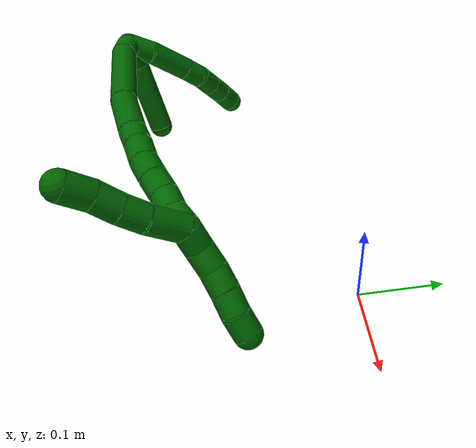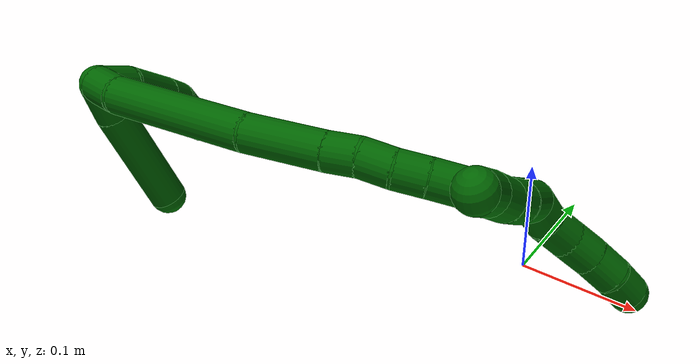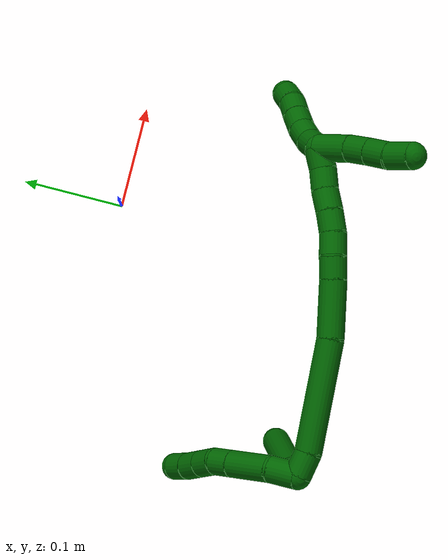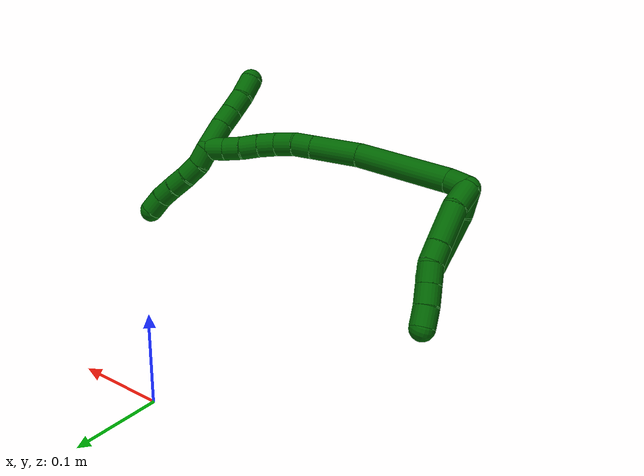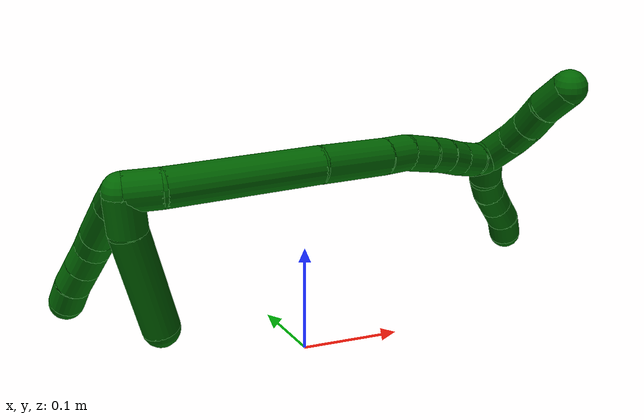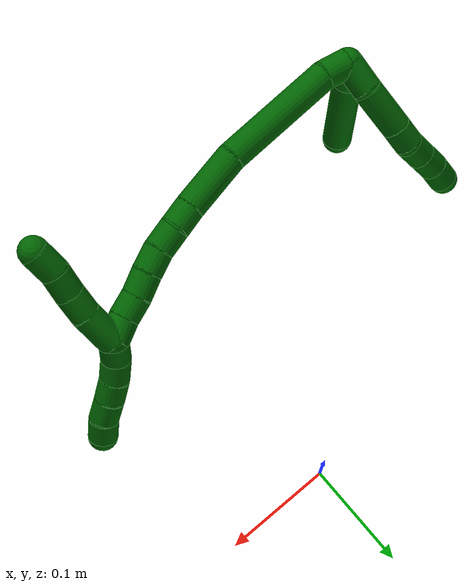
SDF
<sdf version="1.7">
 <world name="default">
  <model name="6">
   <static>0</static>
   <link name="6">
    <collision name="collision-cylinder-e_1_2_8">
     <pose>0.007932 0.006742 -0.008553 -2.47401 0.629468 -1.50772</pose>
     <geometry><cylinder><radius>0.0125</radius><length>0.026945</length></cylinder></geometry>
     <surface>
      <friction><ode><mu>1.16</mu><mu2>1.16</mu2><slip1>0</slip1><slip2>0</slip2></ode></friction>
      <contact><ode><kp>1e+06</kp><kd>1</kd><max_vel>0</max_vel><min_depth>0.001</min_depth></ode></contact>
     </surface>
    </collision>
    <visual name="visual-cylinder-e_1_2_8">
     <pose>0.007932 0.006742 -0.008553 -2.47401 0.629468 -1.50772</pose>
     <geometry><cylinder><radius>0.0125</radius><length>0.026945</length></cylinder></geometry>
     <material><ambient>0 0.392157 0.003922 1</ambient></material>
    </visual>
    <collision name="collision-cylinder-e_2_8_9">
     <pose>0.024525 0.024555 -0.033245 -2.54036 0.41667 -1.19697</pose>
     <geometry><cylinder><radius>0.0125</radius><length>0.042806</length></cylinder></geometry>
     <surface>
      <friction><ode><mu>1.16</mu><mu2>1.16</mu2><slip1>0</slip1><slip2>0</slip2></ode></friction>
      <contact><ode><kp>1e+06</kp><kd>1</kd><max_vel>0</max_vel><min_depth>0.001</min_depth></ode></contact>
     </surface>
    </collision>
    <visual name="visual-cylinder-e_2_8_9">
     <pose>0.024525 0.024555 -0.033245 -2.54036 0.41667 -1.19697</pose>
     <geometry><cylinder><radius>0.0125</radius><length>0.042806</length></cylinder></geometry>
     <material><ambient>0 0.392157 0.003922 1</ambient></material>
    </visual>
    <collision name="collision-cylinder-e_3_9_10">
     <pose>0.036994 0.040672 -0.057205 -2.56859 0.388218 -1.17684</pose>
     <geometry><cylinder><radius>0.0125</radius><length>0.020111</length></cylinder></geometry>
     <surface>
      <friction><ode><mu>1.16</mu><mu2>1.16</mu2><slip1>0</slip1><slip2>0</slip2></ode></friction>
      <contact><ode><kp>1e+06</kp><kd>1</kd><max_vel>0</max_vel><min_depth>0.001</min_depth></ode></contact>
     </surface>
    </collision>
    <visual name="visual-cylinder-e_3_9_10">
     <pose>0.036994 0.040672 -0.057205 -2.56859 0.388218 -1.17684</pose>
     <geometry><cylinder><radius>0.0125</radius><length>0.020111</length></cylinder></geometry>
     <material><ambient>0 0.392157 0.003922 1</ambient></material>
    </visual>
    <collision name="collision-cylinder-e_4_10_11">
     <pose>0.04167 0.051178 -0.073422 -2.56502 0.086655 -0.29034</pose>
     <geometry><cylinder><radius>0.0125</radius><length>0.020106</length></cylinder></geometry>
     <surface>
      <friction><ode><mu>1.16</mu><mu2>1.16</mu2><slip1>0</slip1><slip2>0</slip2></ode></friction>
      <contact><ode><kp>1e+06</kp><kd>1</kd><max_vel>0</max_vel><min_depth>0.001</min_depth></ode></contact>
     </surface>
    </collision>
    <visual name="visual-cylinder-e_4_10_11">
     <pose>0.04167 0.051178 -0.073422 -2.56502 0.086655 -0.29034</pose>
     <geometry><cylinder><radius>0.0125</radius><length>0.020106</length></cylinder></geometry>
     <material><ambient>0 0.392157 0.003922 1</ambient></material>
    </visual>
    <collision name="collision-cylinder-e_5_11_12">
     <pose>0.043421 0.062111 -0.090149 -2.56033 0.088162 -0.292839</pose>
     <geometry><cylinder><radius>0.0125</radius><length>0.020014</length></cylinder></geometry>
     <surface>
      <friction><ode><mu>1.16</mu><mu2>1.16</mu2><slip1>0</slip1><slip2>0</slip2></ode></friction>
      <contact><ode><kp>1e+06</kp><kd>1</kd><max_vel>0</max_vel><min_depth>0.001</min_depth></ode></contact>
     </surface>
    </collision>
    <visual name="visual-cylinder-e_5_11_12">
     <pose>0.043421 0.062111 -0.090149 -2.56033 0.088162 -0.292839</pose>
     <geometry><cylinder><radius>0.0125</radius><length>0.020014</length></cylinder></geometry>
     <material><ambient>0 0.392157 0.003922 1</ambient></material>
    </visual>
    <collision name="collision-cylinder-e_6_12_6">
     <pose>0.045715 0.072237 -0.107229 -2.65287 0.141624 -0.554294</pose>
     <geometry><cylinder><radius>0.0125</radius><length>0.020018</length></cylinder></geometry>
     <surface>
      <friction><ode><mu>1.16</mu><mu2>1.16</mu2><slip1>0</slip1><slip2>0</slip2></ode></friction>
      <contact><ode><kp>1e+06</kp><kd>1</kd><max_vel>0</max_vel><min_depth>0.001</min_depth></ode></contact>
     </surface>
    </collision>
    <visual name="visual-cylinder-e_6_12_6">
     <pose>0.045715 0.072237 -0.107229 -2.65287 0.141624 -0.554294</pose>
     <geometry><cylinder><radius>0.0125</radius><length>0.020018</length></cylinder></geometry>
     <material><ambient>0 0.392157 0.003922 1</ambient></material>
    </visual>
    <collision name="collision-cylinder-e_1_2_13">
     <pose>-0.000567 8.1e-05 -0.012856 -3.13533 -0.044048 2.85901</pose>
     <geometry><cylinder><radius>0.0125</radius><length>0.025738</length></cylinder></geometry>
     <surface>
      <friction><ode><mu>1.16</mu><mu2>1.16</mu2><slip1>0</slip1><slip2>0</slip2></ode></friction>
      <contact><ode><kp>1e+06</kp><kd>1</kd><max_vel>0</max_vel><min_depth>0.001</min_depth></ode></contact>
     </surface>
    </collision>
    <visual name="visual-cylinder-e_1_2_13">
     <pose>-0.000567 8.1e-05 -0.012856 -3.13533 -0.044048 2.85901</pose>
     <geometry><cylinder><radius>0.0125</radius><length>0.025738</length></cylinder></geometry>
     <material><ambient>0 0.392157 0.003922 1</ambient></material>
    </visual>
    <collision name="collision-cylinder-e_2_13_5">
     <pose>0.001311 -0.004257 -0.062499 3.02207 0.065867 1.00668</pose>
     <geometry><cylinder><radius>0.0125</radius><length>0.074262</length></cylinder></geometry>
     <surface>
      <friction><ode><mu>1.16</mu><mu2>1.16</mu2><slip1>0</slip1><slip2>0</slip2></ode></friction>
      <contact><ode><kp>1e+06</kp><kd>1</kd><max_vel>0</max_vel><min_depth>0.001</min_depth></ode></contact>
     </surface>
    </collision>
    <visual name="visual-cylinder-e_2_13_5">
     <pose>0.001311 -0.004257 -0.062499 3.02207 0.065867 1.00668</pose>
     <geometry><cylinder><radius>0.0125</radius><length>0.074262</length></cylinder></geometry>
     <material><ambient>0 0.392157 0.003922 1</ambient></material>
    </visual>
    <collision name="collision-cylinder-e_1_2_14">
     <pose>0.004472 -0.010492 -0.000556 1.62375 0.402389 0.42365</pose>
     <geometry><cylinder><radius>0.0125</radius><length>0.022838</length></cylinder></geometry>
     <surface>
      <friction><ode><mu>1.16</mu><mu2>1.16</mu2><slip1>0</slip1><slip2>0</slip2></ode></friction>
      <contact><ode><kp>1e+06</kp><kd>1</kd><max_vel>0</max_vel><min_depth>0.001</min_depth></ode></contact>
     </surface>
    </collision>
    <visual name="visual-cylinder-e_1_2_14">
     <pose>0.004472 -0.010492 -0.000556 1.62375 0.402389 0.42365</pose>
     <geometry><cylinder><radius>0.0125</radius><length>0.022838</length></cylinder></geometry>
     <material><ambient>0 0.392157 0.003922 1</ambient></material>
    </visual>
    <collision name="collision-cylinder-e_2_14_15">
     <pose>0.038849 -0.062063 -0.006875 1.71016 0.624648 0.711129</pose>
     <geometry><cylinder><radius>0.0125</radius><length>0.102275</length></cylinder></geometry>
     <surface>
      <friction><ode><mu>1.16</mu><mu2>1.16</mu2><slip1>0</slip1><slip2>0</slip2></ode></friction>
      <contact><ode><kp>1e+06</kp><kd>1</kd><max_vel>0</max_vel><min_depth>0.001</min_depth></ode></contact>
     </surface>
    </collision>
    <visual name="visual-cylinder-e_2_14_15">
     <pose>0.038849 -0.062063 -0.006875 1.71016 0.624648 0.711129</pose>
     <geometry><cylinder><radius>0.0125</radius><length>0.102275</length></cylinder></geometry>
     <material><ambient>0 0.392157 0.003922 1</ambient></material>
    </visual>
    <collision name="collision-cylinder-e_3_15_16">
     <pose>0.086598 -0.12191 -0.017621 1.83035 0.743135 0.937898</pose>
     <geometry><cylinder><radius>0.0125</radius><length>0.052742</length></cylinder></geometry>
     <surface>
      <friction><ode><mu>1.16</mu><mu2>1.16</mu2><slip1>0</slip1><slip2>0</slip2></ode></friction>
      <contact><ode><kp>1e+06</kp><kd>1</kd><max_vel>0</max_vel><min_depth>0.001</min_depth></ode></contact>
     </surface>
    </collision>
    <visual name="visual-cylinder-e_3_15_16">
     <pose>0.086598 -0.12191 -0.017621 1.83035 0.743135 0.937898</pose>
     <geometry><cylinder><radius>0.0125</radius><length>0.052742</length></cylinder></geometry>
     <material><ambient>0 0.392157 0.003922 1</ambient></material>
    </visual>
    <collision name="collision-cylinder-e_4_16_17">
     <pose>0.111961 -0.14759 -0.024488 1.83689 0.80965 1.02236</pose>
     <geometry><cylinder><radius>0.0125</radius><length>0.020772</length></cylinder></geometry>
     <surface>
      <friction><ode><mu>1.16</mu><mu2>1.16</mu2><slip1>0</slip1><slip2>0</slip2></ode></friction>
      <contact><ode><kp>1e+06</kp><kd>1</kd><max_vel>0</max_vel><min_depth>0.001</min_depth></ode></contact>
     </surface>
    </collision>
    <visual name="visual-cylinder-e_4_16_17">
     <pose>0.111961 -0.14759 -0.024488 1.83689 0.80965 1.02236</pose>
     <geometry><cylinder><radius>0.0125</radius><length>0.020772</length></cylinder></geometry>
     <material><ambient>0 0.392157 0.003922 1</ambient></material>
    </visual>
    <collision name="collision-cylinder-e_5_17_18">
     <pose>0.126263 -0.16166 -0.029941 2.03329 0.703331 1.07039</pose>
     <geometry><cylinder><radius>0.0125</radius><length>0.020975</length></cylinder></geometry>
     <surface>
      <friction><ode><mu>1.16</mu><mu2>1.16</mu2><slip1>0</slip1><slip2>0</slip2></ode></friction>
      <contact><ode><kp>1e+06</kp><kd>1</kd><max_vel>0</max_vel><min_depth>0.001</min_depth></ode></contact>
     </surface>
    </collision>
    <visual name="visual-cylinder-e_5_17_18">
     <pose>0.126263 -0.16166 -0.029941 2.03329 0.703331 1.07039</pose>
     <geometry><cylinder><radius>0.0125</radius><length>0.020975</length></cylinder></geometry>
     <material><ambient>0 0.392157 0.003922 1</ambient></material>
    </visual>
    <collision name="collision-cylinder-e_6_18_19">
     <pose>0.14041 -0.174436 -0.037374 2.17336 0.823873 1.38661</pose>
     <geometry><cylinder><radius>0.0125</radius><length>0.020072</length></cylinder></geometry>
     <surface>
      <friction><ode><mu>1.16</mu><mu2>1.16</mu2><slip1>0</slip1><slip2>0</slip2></ode></friction>
      <contact><ode><kp>1e+06</kp><kd>1</kd><max_vel>0</max_vel><min_depth>0.001</min_depth></ode></contact>
     </surface>
    </collision>
    <visual name="visual-cylinder-e_6_18_19">
     <pose>0.14041 -0.174436 -0.037374 2.17336 0.823873 1.38661</pose>
     <geometry><cylinder><radius>0.0125</radius><length>0.020072</length></cylinder></geometry>
     <material><ambient>0 0.392157 0.003922 1</ambient></material>
    </visual>
    <collision name="collision-cylinder-e_7_19_20">
     <pose>0.155195 -0.185172 -0.045744 2.29259 0.827541 1.54194</pose>
     <geometry><cylinder><radius>0.0125</radius><length>0.020156</length></cylinder></geometry>
     <surface>
      <friction><ode><mu>1.16</mu><mu2>1.16</mu2><slip1>0</slip1><slip2>0</slip2></ode></friction>
      <contact><ode><kp>1e+06</kp><kd>1</kd><max_vel>0</max_vel><min_depth>0.001</min_depth></ode></contact>
     </surface>
    </collision>
    <visual name="visual-cylinder-e_7_19_20">
     <pose>0.155195 -0.185172 -0.045744 2.29259 0.827541 1.54194</pose>
     <geometry><cylinder><radius>0.0125</radius><length>0.020156</length></cylinder></geometry>
     <material><ambient>0 0.392157 0.003922 1</ambient></material>
    </visual>
    <collision name="collision-cylinder-e_8_20_21">
     <pose>0.169631 -0.196383 -0.054011 2.12381 0.775309 1.2636</pose>
     <geometry><cylinder><radius>0.0125</radius><length>0.020047</length></cylinder></geometry>
     <surface>
      <friction><ode><mu>1.16</mu><mu2>1.16</mu2><slip1>0</slip1><slip2>0</slip2></ode></friction>
      <contact><ode><kp>1e+06</kp><kd>1</kd><max_vel>0</max_vel><min_depth>0.001</min_depth></ode></contact>
     </surface>
    </collision>
    <visual name="visual-cylinder-e_8_20_21">
     <pose>0.169631 -0.196383 -0.054011 2.12381 0.775309 1.2636</pose>
     <geometry><cylinder><radius>0.0125</radius><length>0.020047</length></cylinder></geometry>
     <material><ambient>0 0.392157 0.003922 1</ambient></material>
    </visual>
    <collision name="collision-cylinder-e_9_21_1">
     <pose>0.184908 -0.207422 -0.06069 2.10388 0.963214 1.48237</pose>
     <geometry><cylinder><radius>0.0125</radius><length>0.020123</length></cylinder></geometry>
     <surface>
      <friction><ode><mu>1.16</mu><mu2>1.16</mu2><slip1>0</slip1><slip2>0</slip2></ode></friction>
      <contact><ode><kp>1e+06</kp><kd>1</kd><max_vel>0</max_vel><min_depth>0.001</min_depth></ode></contact>
     </surface>
    </collision>
    <visual name="visual-cylinder-e_9_21_1">
     <pose>0.184908 -0.207422 -0.06069 2.10388 0.963214 1.48237</pose>
     <geometry><cylinder><radius>0.0125</radius><length>0.020123</length></cylinder></geometry>
     <material><ambient>0 0.392157 0.003922 1</ambient></material>
    </visual>
    <collision name="collision-cylinder-e_1_1_22">
     <pose>0.185882 -0.221362 -0.052014 0.659693 -0.460899 -0.1603</pose>
     <geometry><cylinder><radius>0.0125</radius><length>0.032768</length></cylinder></geometry>
     <surface>
      <friction><ode><mu>1.16</mu><mu2>1.16</mu2><slip1>0</slip1><slip2>0</slip2></ode></friction>
      <contact><ode><kp>1e+06</kp><kd>1</kd><max_vel>0</max_vel><min_depth>0.001</min_depth></ode></contact>
     </surface>
    </collision>
    <visual name="visual-cylinder-e_1_1_22">
     <pose>0.185882 -0.221362 -0.052014 0.659693 -0.460899 -0.1603</pose>
     <geometry><cylinder><radius>0.0125</radius><length>0.032768</length></cylinder></geometry>
     <material><ambient>0 0.392157 0.003922 1</ambient></material>
    </visual>
    <collision name="collision-cylinder-e_2_22_23">
     <pose>0.17332 -0.235049 -0.032347 0.526674 -0.514271 -0.141548</pose>
     <geometry><cylinder><radius>0.0125</radius><length>0.021448</length></cylinder></geometry>
     <surface>
      <friction><ode><mu>1.16</mu><mu2>1.16</mu2><slip1>0</slip1><slip2>0</slip2></ode></friction>
      <contact><ode><kp>1e+06</kp><kd>1</kd><max_vel>0</max_vel><min_depth>0.001</min_depth></ode></contact>
     </surface>
    </collision>
    <visual name="visual-cylinder-e_2_22_23">
     <pose>0.17332 -0.235049 -0.032347 0.526674 -0.514271 -0.141548</pose>
     <geometry><cylinder><radius>0.0125</radius><length>0.021448</length></cylinder></geometry>
     <material><ambient>0 0.392157 0.003922 1</ambient></material>
    </visual>
    <collision name="collision-cylinder-e_3_23_24">
     <pose>0.162984 -0.243783 -0.01543 0.428554 -0.479797 -0.106362</pose>
     <geometry><cylinder><radius>0.0125</radius><length>0.021925</length></cylinder></geometry>
     <surface>
      <friction><ode><mu>1.16</mu><mu2>1.16</mu2><slip1>0</slip1><slip2>0</slip2></ode></friction>
      <contact><ode><kp>1e+06</kp><kd>1</kd><max_vel>0</max_vel><min_depth>0.001</min_depth></ode></contact>
     </surface>
    </collision>
    <visual name="visual-cylinder-e_3_23_24">
     <pose>0.162984 -0.243783 -0.01543 0.428554 -0.479797 -0.106362</pose>
     <geometry><cylinder><radius>0.0125</radius><length>0.021925</length></cylinder></geometry>
     <material><ambient>0 0.392157 0.003922 1</ambient></material>
    </visual>
    <collision name="collision-cylinder-e_4_24_4">
     <pose>0.153139 -0.254253 0.002252 0.628896 -0.412752 -0.135972</pose>
     <geometry><cylinder><radius>0.0125</radius><length>0.023859</length></cylinder></geometry>
     <surface>
      <friction><ode><mu>1.16</mu><mu2>1.16</mu2><slip1>0</slip1><slip2>0</slip2></ode></friction>
      <contact><ode><kp>1e+06</kp><kd>1</kd><max_vel>0</max_vel><min_depth>0.001</min_depth></ode></contact>
     </surface>
    </collision>
    <visual name="visual-cylinder-e_4_24_4">
     <pose>0.153139 -0.254253 0.002252 0.628896 -0.412752 -0.135972</pose>
     <geometry><cylinder><radius>0.0125</radius><length>0.023859</length></cylinder></geometry>
     <material><ambient>0 0.392157 0.003922 1</ambient></material>
    </visual>
    <collision name="collision-cylinder-e_1_1_25">
     <pose>0.195573 -0.212748 -0.073308 3.10244 0.242889 2.82348</pose>
     <geometry><cylinder><radius>0.0125</radius><length>0.02</length></cylinder></geometry>
     <surface>
      <friction><ode><mu>1.16</mu><mu2>1.16</mu2><slip1>0</slip1><slip2>0</slip2></ode></friction>
      <contact><ode><kp>1e+06</kp><kd>1</kd><max_vel>0</max_vel><min_depth>0.001</min_depth></ode></contact>
     </surface>
    </collision>
    <visual name="visual-cylinder-e_1_1_25">
     <pose>0.195573 -0.212748 -0.073308 3.10244 0.242889 2.82348</pose>
     <geometry><cylinder><radius>0.0125</radius><length>0.02</length></cylinder></geometry>
     <material><ambient>0 0.392157 0.003922 1</ambient></material>
    </visual>
    <collision name="collision-cylinder-e_2_25_26">
     <pose>0.202532 -0.21512 -0.091685 2.91604 0.472771 2.26261</pose>
     <geometry><cylinder><radius>0.0125</radius><length>0.02</length></cylinder></geometry>
     <surface>
      <friction><ode><mu>1.16</mu><mu2>1.16</mu2><slip1>0</slip1><slip2>0</slip2></ode></friction>
      <contact><ode><kp>1e+06</kp><kd>1</kd><max_vel>0</max_vel><min_depth>0.001</min_depth></ode></contact>
     </surface>
    </collision>
    <visual name="visual-cylinder-e_2_25_26">
     <pose>0.202532 -0.21512 -0.091685 2.91604 0.472771 2.26261</pose>
     <geometry><cylinder><radius>0.0125</radius><length>0.02</length></cylinder></geometry>
     <material><ambient>0 0.392157 0.003922 1</ambient></material>
    </visual>
    <collision name="collision-cylinder-e_3_26_27">
     <pose>0.211683 -0.220467 -0.108584 2.75398 0.477753 1.78486</pose>
     <geometry><cylinder><radius>0.0125</radius><length>0.02</length></cylinder></geometry>
     <surface>
      <friction><ode><mu>1.16</mu><mu2>1.16</mu2><slip1>0</slip1><slip2>0</slip2></ode></friction>
      <contact><ode><kp>1e+06</kp><kd>1</kd><max_vel>0</max_vel><min_depth>0.001</min_depth></ode></contact>
     </surface>
    </collision>
    <visual name="visual-cylinder-e_3_26_27">
     <pose>0.211683 -0.220467 -0.108584 2.75398 0.477753 1.78486</pose>
     <geometry><cylinder><radius>0.0125</radius><length>0.02</length></cylinder></geometry>
     <material><ambient>0 0.392157 0.003922 1</ambient></material>
    </visual>
    <collision name="collision-cylinder-e_4_27_28">
     <pose>0.220421 -0.227455 -0.125152 2.7313 0.426863 1.61157</pose>
     <geometry><cylinder><radius>0.0125</radius><length>0.02</length></cylinder></geometry>
     <surface>
      <friction><ode><mu>1.16</mu><mu2>1.16</mu2><slip1>0</slip1><slip2>0</slip2></ode></friction>
      <contact><ode><kp>1e+06</kp><kd>1</kd><max_vel>0</max_vel><min_depth>0.001</min_depth></ode></contact>
     </surface>
    </collision>
    <visual name="visual-cylinder-e_4_27_28">
     <pose>0.220421 -0.227455 -0.125152 2.7313 0.426863 1.61157</pose>
     <geometry><cylinder><radius>0.0125</radius><length>0.02</length></cylinder></geometry>
     <material><ambient>0 0.392157 0.003922 1</ambient></material>
    </visual>
    <collision name="collision-cylinder-e_5_28_3">
     <pose>0.228133 -0.232834 -0.142675 2.95329 0.36525 2.19628</pose>
     <geometry><cylinder><radius>0.0125</radius><length>0.02</length></cylinder></geometry>
     <surface>
      <friction><ode><mu>1.16</mu><mu2>1.16</mu2><slip1>0</slip1><slip2>0</slip2></ode></friction>
      <contact><ode><kp>1e+06</kp><kd>1</kd><max_vel>0</max_vel><min_depth>0.001</min_depth></ode></contact>
     </surface>
    </collision>
    <visual name="visual-cylinder-e_5_28_3">
     <pose>0.228133 -0.232834 -0.142675 2.95329 0.36525 2.19628</pose>
     <geometry><cylinder><radius>0.0125</radius><length>0.02</length></cylinder></geometry>
     <material><ambient>0 0.392157 0.003922 1</ambient></material>
    </visual>
    <collision name="collision-sphere-3">
     <pose>0.231705 -0.234582 -0.15185 0 -0 0</pose>
     <geometry><sphere><radius>0.0125</radius></sphere></geometry>
     <surface>
      <friction><ode><mu>1.16</mu><mu2>1.16</mu2><slip1>0</slip1><slip2>0</slip2></ode></friction>
      <contact><ode><kp>1e+06</kp><kd>1</kd><max_vel>0</max_vel><min_depth>0.001</min_depth></ode></contact>
     </surface>
    </collision>
    <visual name="visual-sphere-3">
     <pose>0.231705 -0.234582 -0.15185 0 -0 0</pose>
     <geometry><sphere><radius>0.0125</radius></sphere></geometry>
     <material><ambient>0 0.392157 0.003922 1</ambient></material>
    </visual>
    <collision name="collision-sphere-28">
     <pose>0.224562 -0.231086 -0.1335 0 -0 0</pose>
     <geometry><sphere><radius>0.0125</radius></sphere></geometry>
     <surface>
      <friction><ode><mu>1.16</mu><mu2>1.16</mu2><slip1>0</slip1><slip2>0</slip2></ode></friction>
      <contact><ode><kp>1e+06</kp><kd>1</kd><max_vel>0</max_vel><min_depth>0.001</min_depth></ode></contact>
     </surface>
    </collision>
    <visual name="visual-sphere-28">
     <pose>0.224562 -0.231086 -0.1335 0 -0 0</pose>
     <geometry><sphere><radius>0.0125</radius></sphere></geometry>
     <material><ambient>0 0.392157 0.003922 1</ambient></material>
    </visual>
    <collision name="collision-sphere-27">
     <pose>0.216281 -0.223824 -0.116805 0 -0 0</pose>
     <geometry><sphere><radius>0.0125</radius></sphere></geometry>
     <surface>
      <friction><ode><mu>1.16</mu><mu2>1.16</mu2><slip1>0</slip1><slip2>0</slip2></ode></friction>
      <contact><ode><kp>1e+06</kp><kd>1</kd><max_vel>0</max_vel><min_depth>0.001</min_depth></ode></contact>
     </surface>
    </collision>
    <visual name="visual-sphere-27">
     <pose>0.216281 -0.223824 -0.116805 0 -0 0</pose>
     <geometry><sphere><radius>0.0125</radius></sphere></geometry>
     <material><ambient>0 0.392157 0.003922 1</ambient></material>
    </visual>
    <collision name="collision-sphere-26">
     <pose>0.207086 -0.217111 -0.100362 0 -0 0</pose>
     <geometry><sphere><radius>0.0125</radius></sphere></geometry>
     <surface>
      <friction><ode><mu>1.16</mu><mu2>1.16</mu2><slip1>0</slip1><slip2>0</slip2></ode></friction>
      <contact><ode><kp>1e+06</kp><kd>1</kd><max_vel>0</max_vel><min_depth>0.001</min_depth></ode></contact>
     </surface>
    </collision>
    <visual name="visual-sphere-26">
     <pose>0.207086 -0.217111 -0.100362 0 -0 0</pose>
     <geometry><sphere><radius>0.0125</radius></sphere></geometry>
     <material><ambient>0 0.392157 0.003922 1</ambient></material>
    </visual>
    <collision name="collision-sphere-25">
     <pose>0.197979 -0.213128 -0.083007 0 -0 0</pose>
     <geometry><sphere><radius>0.0125</radius></sphere></geometry>
     <surface>
      <friction><ode><mu>1.16</mu><mu2>1.16</mu2><slip1>0</slip1><slip2>0</slip2></ode></friction>
      <contact><ode><kp>1e+06</kp><kd>1</kd><max_vel>0</max_vel><min_depth>0.001</min_depth></ode></contact>
     </surface>
    </collision>
    <visual name="visual-sphere-25">
     <pose>0.197979 -0.213128 -0.083007 0 -0 0</pose>
     <geometry><sphere><radius>0.0125</radius></sphere></geometry>
     <material><ambient>0 0.392157 0.003922 1</ambient></material>
    </visual>
    <collision name="collision-sphere-4">
     <pose>0.148353 -0.260681 0.011089 0 -0 0</pose>
     <geometry><sphere><radius>0.0125</radius></sphere></geometry>
     <surface>
      <friction><ode><mu>1.16</mu><mu2>1.16</mu2><slip1>0</slip1><slip2>0</slip2></ode></friction>
      <contact><ode><kp>1e+06</kp><kd>1</kd><max_vel>0</max_vel><min_depth>0.001</min_depth></ode></contact>
     </surface>
    </collision>
    <visual name="visual-sphere-4">
     <pose>0.148353 -0.260681 0.011089 0 -0 0</pose>
     <geometry><sphere><radius>0.0125</radius></sphere></geometry>
     <material><ambient>0 0.392157 0.003922 1</ambient></material>
    </visual>
    <collision name="collision-sphere-24">
     <pose>0.157924 -0.247824 -0.006585 0 -0 0</pose>
     <geometry><sphere><radius>0.0125</radius></sphere></geometry>
     <surface>
      <friction><ode><mu>1.16</mu><mu2>1.16</mu2><slip1>0</slip1><slip2>0</slip2></ode></friction>
      <contact><ode><kp>1e+06</kp><kd>1</kd><max_vel>0</max_vel><min_depth>0.001</min_depth></ode></contact>
     </surface>
    </collision>
    <visual name="visual-sphere-24">
     <pose>0.157924 -0.247824 -0.006585 0 -0 0</pose>
     <geometry><sphere><radius>0.0125</radius></sphere></geometry>
     <material><ambient>0 0.392157 0.003922 1</ambient></material>
    </visual>
    <collision name="collision-sphere-23">
     <pose>0.168044 -0.239742 -0.024275 0 -0 0</pose>
     <geometry><sphere><radius>0.0125</radius></sphere></geometry>
     <surface>
      <friction><ode><mu>1.16</mu><mu2>1.16</mu2><slip1>0</slip1><slip2>0</slip2></ode></friction>
      <contact><ode><kp>1e+06</kp><kd>1</kd><max_vel>0</max_vel><min_depth>0.001</min_depth></ode></contact>
     </surface>
    </collision>
    <visual name="visual-sphere-23">
     <pose>0.168044 -0.239742 -0.024275 0 -0 0</pose>
     <geometry><sphere><radius>0.0125</radius></sphere></geometry>
     <material><ambient>0 0.392157 0.003922 1</ambient></material>
    </visual>
    <collision name="collision-sphere-22">
     <pose>0.178595 -0.230356 -0.040418 0 -0 0</pose>
     <geometry><sphere><radius>0.0125</radius></sphere></geometry>
     <surface>
      <friction><ode><mu>1.16</mu><mu2>1.16</mu2><slip1>0</slip1><slip2>0</slip2></ode></friction>
      <contact><ode><kp>1e+06</kp><kd>1</kd><max_vel>0</max_vel><min_depth>0.001</min_depth></ode></contact>
     </surface>
    </collision>
    <visual name="visual-sphere-22">
     <pose>0.178595 -0.230356 -0.040418 0 -0 0</pose>
     <geometry><sphere><radius>0.0125</radius></sphere></geometry>
     <material><ambient>0 0.392157 0.003922 1</ambient></material>
    </visual>
    <collision name="collision-sphere-1">
     <pose>0.193168 -0.212369 -0.063609 0 -0 0</pose>
     <geometry><sphere><radius>0.0125</radius></sphere></geometry>
     <surface>
      <friction><ode><mu>1.16</mu><mu2>1.16</mu2><slip1>0</slip1><slip2>0</slip2></ode></friction>
      <contact><ode><kp>1e+06</kp><kd>1</kd><max_vel>0</max_vel><min_depth>0.001</min_depth></ode></contact>
     </surface>
    </collision>
    <visual name="visual-sphere-1">
     <pose>0.193168 -0.212369 -0.063609 0 -0 0</pose>
     <geometry><sphere><radius>0.0125</radius></sphere></geometry>
     <material><ambient>0 0.392157 0.003922 1</ambient></material>
    </visual>
    <collision name="collision-sphere-21">
     <pose>0.176647 -0.202475 -0.057771 0 -0 0</pose>
     <geometry><sphere><radius>0.0125</radius></sphere></geometry>
     <surface>
      <friction><ode><mu>1.16</mu><mu2>1.16</mu2><slip1>0</slip1><slip2>0</slip2></ode></friction>
      <contact><ode><kp>1e+06</kp><kd>1</kd><max_vel>0</max_vel><min_depth>0.001</min_depth></ode></contact>
     </surface>
    </collision>
    <visual name="visual-sphere-21">
     <pose>0.176647 -0.202475 -0.057771 0 -0 0</pose>
     <geometry><sphere><radius>0.0125</radius></sphere></geometry>
     <material><ambient>0 0.392157 0.003922 1</ambient></material>
    </visual>
    <collision name="collision-sphere-12">
     <pose>0.044302 0.067584 -0.09848 0 -0 0</pose>
     <geometry><sphere><radius>0.0125</radius></sphere></geometry>
     <surface>
      <friction><ode><mu>1.16</mu><mu2>1.16</mu2><slip1>0</slip1><slip2>0</slip2></ode></friction>
      <contact><ode><kp>1e+06</kp><kd>1</kd><max_vel>0</max_vel><min_depth>0.001</min_depth></ode></contact>
     </surface>
    </collision>
    <visual name="visual-sphere-12">
     <pose>0.044302 0.067584 -0.09848 0 -0 0</pose>
     <geometry><sphere><radius>0.0125</radius></sphere></geometry>
     <material><ambient>0 0.392157 0.003922 1</ambient></material>
    </visual>
    <collision name="collision-sphere-11">
     <pose>0.04254 0.056638 -0.081818 0 -0 0</pose>
     <geometry><sphere><radius>0.0125</radius></sphere></geometry>
     <surface>
      <friction><ode><mu>1.16</mu><mu2>1.16</mu2><slip1>0</slip1><slip2>0</slip2></ode></friction>
      <contact><ode><kp>1e+06</kp><kd>1</kd><max_vel>0</max_vel><min_depth>0.001</min_depth></ode></contact>
     </surface>
    </collision>
    <visual name="visual-sphere-11">
     <pose>0.04254 0.056638 -0.081818 0 -0 0</pose>
     <geometry><sphere><radius>0.0125</radius></sphere></geometry>
     <material><ambient>0 0.392157 0.003922 1</ambient></material>
    </visual>
    <collision name="collision-sphere-10">
     <pose>0.0408 0.045718 -0.065026 0 -0 0</pose>
     <geometry><sphere><radius>0.0125</radius></sphere></geometry>
     <surface>
      <friction><ode><mu>1.16</mu><mu2>1.16</mu2><slip1>0</slip1><slip2>0</slip2></ode></friction>
      <contact><ode><kp>1e+06</kp><kd>1</kd><max_vel>0</max_vel><min_depth>0.001</min_depth></ode></contact>
     </surface>
    </collision>
    <visual name="visual-sphere-10">
     <pose>0.0408 0.045718 -0.065026 0 -0 0</pose>
     <geometry><sphere><radius>0.0125</radius></sphere></geometry>
     <material><ambient>0 0.392157 0.003922 1</ambient></material>
    </visual>
    <collision name="collision-sphere-9">
     <pose>0.033187 0.035626 -0.049384 0 -0 0</pose>
     <geometry><sphere><radius>0.0125</radius></sphere></geometry>
     <surface>
      <friction><ode><mu>1.16</mu><mu2>1.16</mu2><slip1>0</slip1><slip2>0</slip2></ode></friction>
      <contact><ode><kp>1e+06</kp><kd>1</kd><max_vel>0</max_vel><min_depth>0.001</min_depth></ode></contact>
     </surface>
    </collision>
    <visual name="visual-sphere-9">
     <pose>0.033187 0.035626 -0.049384 0 -0 0</pose>
     <geometry><sphere><radius>0.0125</radius></sphere></geometry>
     <material><ambient>0 0.392157 0.003922 1</ambient></material>
    </visual>
    <collision name="collision-sphere-2">
     <geometry><sphere><radius>0.0125</radius></sphere></geometry>
     <surface>
      <friction><ode><mu>1.16</mu><mu2>1.16</mu2><slip1>0</slip1><slip2>0</slip2></ode></friction>
      <contact><ode><kp>1e+06</kp><kd>1</kd><max_vel>0</max_vel><min_depth>0.001</min_depth></ode></contact>
     </surface>
    </collision>
    <visual name="visual-sphere-2">
     <geometry><sphere><radius>0.0125</radius></sphere></geometry>
     <material><ambient>0 0.392157 0.003922 1</ambient></material>
    </visual>
    <collision name="collision-sphere-19">
     <pose>0.147775 -0.180053 -0.041238 0 -0 0</pose>
     <geometry><sphere><radius>0.0125</radius></sphere></geometry>
     <surface>
      <friction><ode><mu>1.16</mu><mu2>1.16</mu2><slip1>0</slip1><slip2>0</slip2></ode></friction>
      <contact><ode><kp>1e+06</kp><kd>1</kd><max_vel>0</max_vel><min_depth>0.001</min_depth></ode></contact>
     </surface>
    </collision>
    <visual name="visual-sphere-19">
     <pose>0.147775 -0.180053 -0.041238 0 -0 0</pose>
     <geometry><sphere><radius>0.0125</radius></sphere></geometry>
     <material><ambient>0 0.392157 0.003922 1</ambient></material>
    </visual>
    <collision name="collision-sphere-8">
     <pose>0.015863 0.013484 -0.017105 0 -0 0</pose>
     <geometry><sphere><radius>0.0125</radius></sphere></geometry>
     <surface>
      <friction><ode><mu>1.16</mu><mu2>1.16</mu2><slip1>0</slip1><slip2>0</slip2></ode></friction>
      <contact><ode><kp>1e+06</kp><kd>1</kd><max_vel>0</max_vel><min_depth>0.001</min_depth></ode></contact>
     </surface>
    </collision>
    <visual name="visual-sphere-8">
     <pose>0.015863 0.013484 -0.017105 0 -0 0</pose>
     <geometry><sphere><radius>0.0125</radius></sphere></geometry>
     <material><ambient>0 0.392157 0.003922 1</ambient></material>
    </visual>
    <collision name="collision-sphere-6">
     <pose>0.047128 0.076889 -0.115978 0 -0 0</pose>
     <geometry><sphere><radius>0.0125</radius></sphere></geometry>
     <surface>
      <friction><ode><mu>1.16</mu><mu2>1.16</mu2><slip1>0</slip1><slip2>0</slip2></ode></friction>
      <contact><ode><kp>1e+06</kp><kd>1</kd><max_vel>0</max_vel><min_depth>0.001</min_depth></ode></contact>
     </surface>
    </collision>
    <visual name="visual-sphere-6">
     <pose>0.047128 0.076889 -0.115978 0 -0 0</pose>
     <geometry><sphere><radius>0.0125</radius></sphere></geometry>
     <material><ambient>0 0.392157 0.003922 1</ambient></material>
    </visual>
    <collision name="collision-sphere-13">
     <pose>-0.001133 0.000161 -0.025713 0 -0 0</pose>
     <geometry><sphere><radius>0.0125</radius></sphere></geometry>
     <surface>
      <friction><ode><mu>1.16</mu><mu2>1.16</mu2><slip1>0</slip1><slip2>0</slip2></ode></friction>
      <contact><ode><kp>1e+06</kp><kd>1</kd><max_vel>0</max_vel><min_depth>0.001</min_depth></ode></contact>
     </surface>
    </collision>
    <visual name="visual-sphere-13">
     <pose>-0.001133 0.000161 -0.025713 0 -0 0</pose>
     <geometry><sphere><radius>0.0125</radius></sphere></geometry>
     <material><ambient>0 0.392157 0.003922 1</ambient></material>
    </visual>
    <collision name="collision-sphere-5">
     <pose>0.003755 -0.008674 -0.099285 0 -0 0</pose>
     <geometry><sphere><radius>0.0125</radius></sphere></geometry>
     <surface>
      <friction><ode><mu>1.16</mu><mu2>1.16</mu2><slip1>0</slip1><slip2>0</slip2></ode></friction>
      <contact><ode><kp>1e+06</kp><kd>1</kd><max_vel>0</max_vel><min_depth>0.001</min_depth></ode></contact>
     </surface>
    </collision>
    <visual name="visual-sphere-5">
     <pose>0.003755 -0.008674 -0.099285 0 -0 0</pose>
     <geometry><sphere><radius>0.0125</radius></sphere></geometry>
     <material><ambient>0 0.392157 0.003922 1</ambient></material>
    </visual>
    <collision name="collision-sphere-14">
     <pose>0.008944 -0.020984 -0.001112 0 -0 0</pose>
     <geometry><sphere><radius>0.0125</radius></sphere></geometry>
     <surface>
      <friction><ode><mu>1.16</mu><mu2>1.16</mu2><slip1>0</slip1><slip2>0</slip2></ode></friction>
      <contact><ode><kp>1e+06</kp><kd>1</kd><max_vel>0</max_vel><min_depth>0.001</min_depth></ode></contact>
     </surface>
    </collision>
    <visual name="visual-sphere-14">
     <pose>0.008944 -0.020984 -0.001112 0 -0 0</pose>
     <geometry><sphere><radius>0.0125</radius></sphere></geometry>
     <material><ambient>0 0.392157 0.003922 1</ambient></material>
    </visual>
    <collision name="collision-sphere-15">
     <pose>0.068755 -0.103142 -0.012637 0 -0 0</pose>
     <geometry><sphere><radius>0.0125</radius></sphere></geometry>
     <surface>
      <friction><ode><mu>1.16</mu><mu2>1.16</mu2><slip1>0</slip1><slip2>0</slip2></ode></friction>
      <contact><ode><kp>1e+06</kp><kd>1</kd><max_vel>0</max_vel><min_depth>0.001</min_depth></ode></contact>
     </surface>
    </collision>
    <visual name="visual-sphere-15">
     <pose>0.068755 -0.103142 -0.012637 0 -0 0</pose>
     <geometry><sphere><radius>0.0125</radius></sphere></geometry>
     <material><ambient>0 0.392157 0.003922 1</ambient></material>
    </visual>
    <collision name="collision-sphere-16">
     <pose>0.104441 -0.140678 -0.022604 0 -0 0</pose>
     <geometry><sphere><radius>0.0125</radius></sphere></geometry>
     <surface>
      <friction><ode><mu>1.16</mu><mu2>1.16</mu2><slip1>0</slip1><slip2>0</slip2></ode></friction>
      <contact><ode><kp>1e+06</kp><kd>1</kd><max_vel>0</max_vel><min_depth>0.001</min_depth></ode></contact>
     </surface>
    </collision>
    <visual name="visual-sphere-16">
     <pose>0.104441 -0.140678 -0.022604 0 -0 0</pose>
     <geometry><sphere><radius>0.0125</radius></sphere></geometry>
     <material><ambient>0 0.392157 0.003922 1</ambient></material>
    </visual>
    <collision name="collision-sphere-17">
     <pose>0.119481 -0.154501 -0.026372 0 -0 0</pose>
     <geometry><sphere><radius>0.0125</radius></sphere></geometry>
     <surface>
      <friction><ode><mu>1.16</mu><mu2>1.16</mu2><slip1>0</slip1><slip2>0</slip2></ode></friction>
      <contact><ode><kp>1e+06</kp><kd>1</kd><max_vel>0</max_vel><min_depth>0.001</min_depth></ode></contact>
     </surface>
    </collision>
    <visual name="visual-sphere-17">
     <pose>0.119481 -0.154501 -0.026372 0 -0 0</pose>
     <geometry><sphere><radius>0.0125</radius></sphere></geometry>
     <material><ambient>0 0.392157 0.003922 1</ambient></material>
    </visual>
    <collision name="collision-sphere-18">
     <pose>0.133046 -0.168818 -0.03351 0 -0 0</pose>
     <geometry><sphere><radius>0.0125</radius></sphere></geometry>
     <surface>
      <friction><ode><mu>1.16</mu><mu2>1.16</mu2><slip1>0</slip1><slip2>0</slip2></ode></friction>
      <contact><ode><kp>1e+06</kp><kd>1</kd><max_vel>0</max_vel><min_depth>0.001</min_depth></ode></contact>
     </surface>
    </collision>
    <visual name="visual-sphere-18">
     <pose>0.133046 -0.168818 -0.03351 0 -0 0</pose>
     <geometry><sphere><radius>0.0125</radius></sphere></geometry>
     <material><ambient>0 0.392157 0.003922 1</ambient></material>
    </visual>
    <collision name="collision-sphere-20">
     <pose>0.162615 -0.190291 -0.05025 0 -0 0</pose>
     <geometry><sphere><radius>0.0125</radius></sphere></geometry>
     <surface>
      <friction><ode><mu>1.16</mu><mu2>1.16</mu2><slip1>0</slip1><slip2>0</slip2></ode></friction>
      <contact><ode><kp>1e+06</kp><kd>1</kd><max_vel>0</max_vel><min_depth>0.001</min_depth></ode></contact>
     </surface>
    </collision>
    <visual name="visual-sphere-20">
     <pose>0.162615 -0.190291 -0.05025 0 -0 0</pose>
     <geometry><sphere><radius>0.0125</radius></sphere></geometry>
     <material><ambient>0 0.392157 0.003922 1</ambient></material>
    </visual>
    <inertial>
     <pose>0.092799 -0.100322 -0.044629 0 -0 0</pose>
     <mass>0.75</mass>
     <inertia><ixx>0.000204</ixx><ixy>0</ixy><ixz>0</ixz><iyy>9.8e-05</iyy><iyz>0</iyz><izz>-7e-06</izz></inertia>
    </inertial>
   </link>
   <pose>-0.212081 -0.223742 0.21607 0.006652 -0.284075 0.987171</pose>
  </model>
 </world>
</sdf>
